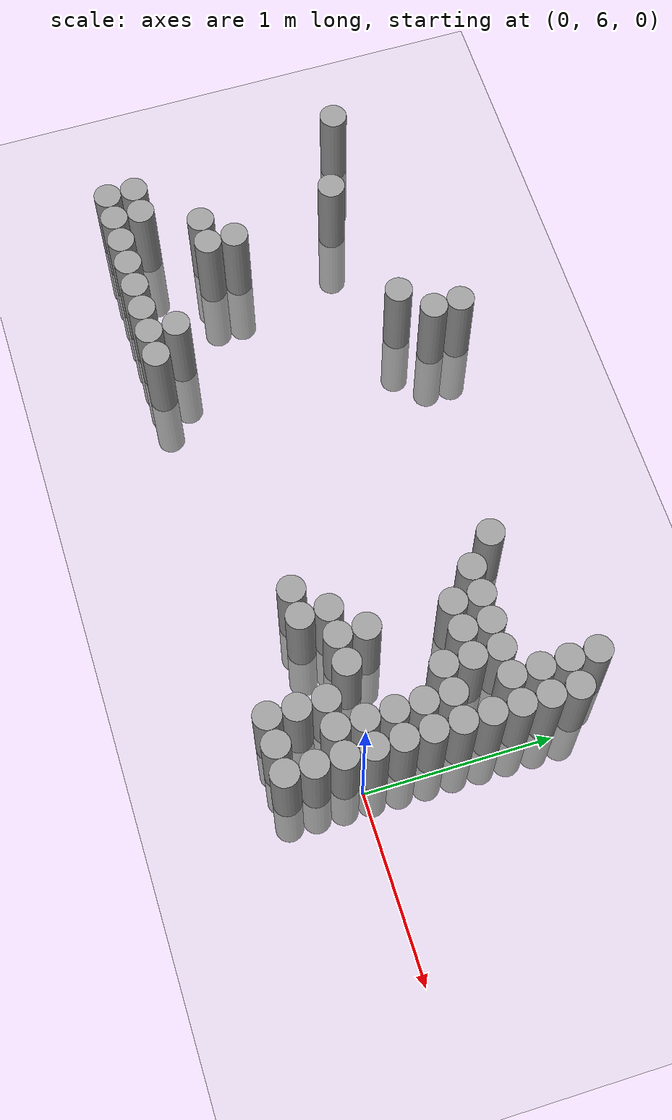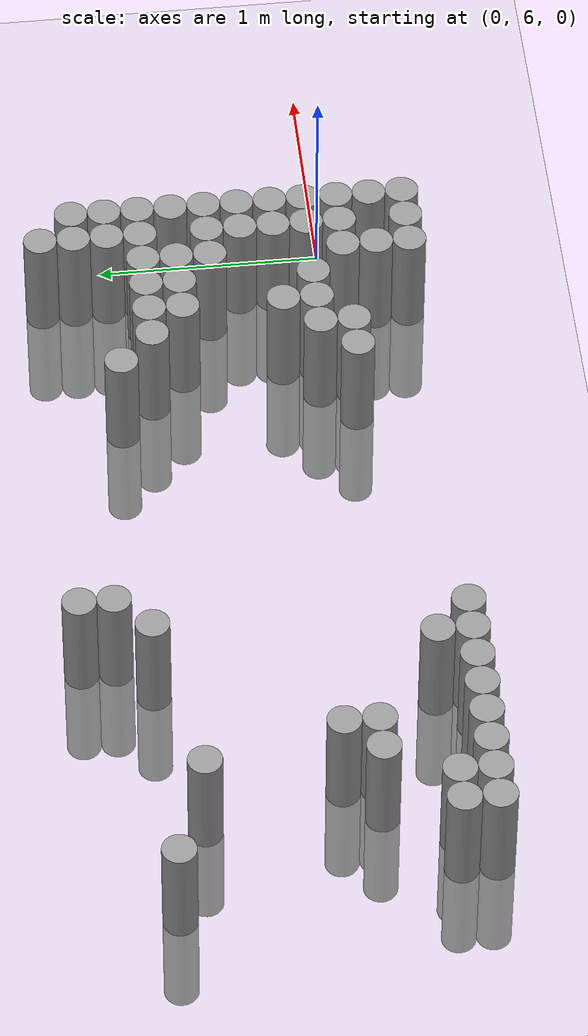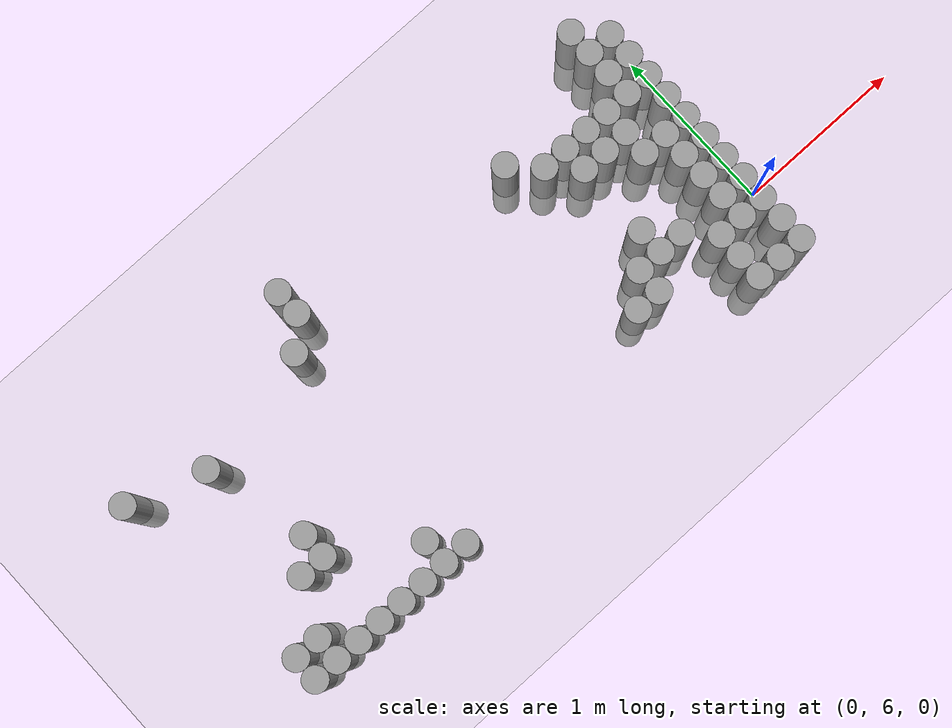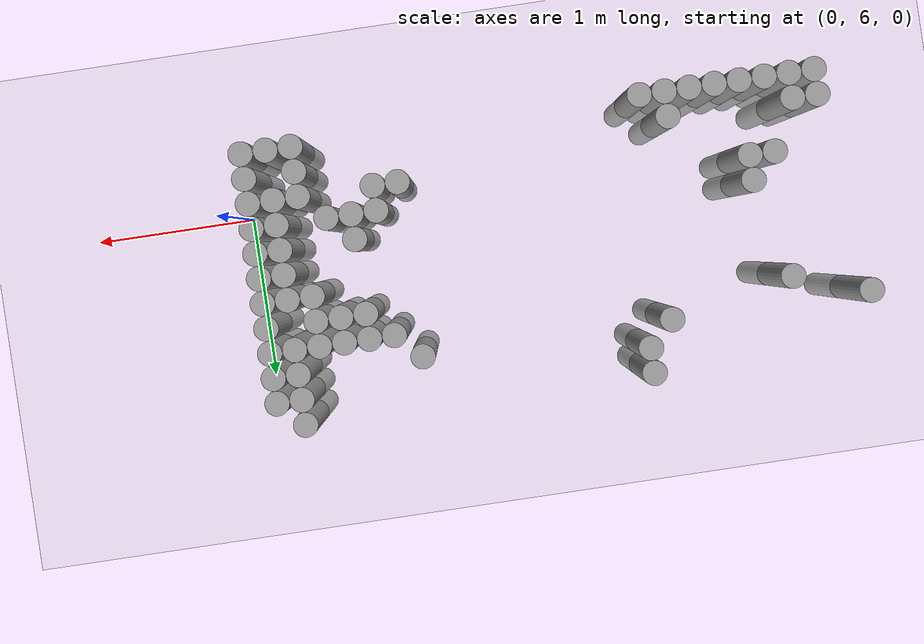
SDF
<sdf version="1.6">
 <world name="default">
  <model name="ground_plane">
   <static>1</static>
   <static>1</static>
   <link name="link">
    <collision name="collision">
     <geometry><plane><normal>0 0 1</normal><size>100 100</size></plane></geometry>
     <surface><friction><ode><mu>100</mu><mu2>50</mu2></ode></friction></surface>
    </collision>
    <visual name="visual">
     <cast_shadows>0</cast_shadows>
     <geometry><plane><normal>0 0 1</normal><size>100 100</size></plane></geometry>
     <material>
      <script><uri>file://media/materials/scripts/gazebo.material</uri><name>Gazebo/Grey</name></script>
     </material>
    </visual>
   </link>
  </model>
  <model name="unit_cylinder_163">
   <static>1</static>
   <pose>-3.675000 6.975000 0.000000 0.000000 0.000000 0.000000</pose>
   <link name="link">
    <inertial>
     <mass>1</mass>
     <inertia><ixx>0.145833</ixx><ixy>0</ixy><ixz>0</ixz><iyy>0.145833</iyy><iyz>0</iyz><izz>0.125</izz></inertia>
    </inertial>
    <collision name="collision">
     <geometry><cylinder><radius>0.075000</radius><length>1</length></cylinder></geometry>
    </collision>
    <visual name="visual">
     <geometry><cylinder><radius>0.075000</radius><length>1</length></cylinder></geometry>
     <material>
      <script><name>Gazebo/Grey</name><uri>file://media/materials/scripts/gazebo.material</uri></script>
     </material>
    </visual>
   </link>
  </model>
  <model name="unit_cylinder_166">
   <static>1</static>
   <pose>-3.525000 5.625000 0.000000 0.000000 0.000000 0.000000</pose>
   <link name="link">
    <inertial>
     <mass>1</mass>
     <inertia><ixx>0.145833</ixx><ixy>0</ixy><ixz>0</ixz><iyy>0.145833</iyy><iyz>0</iyz><izz>0.125</izz></inertia>
    </inertial>
    <collision name="collision">
     <geometry><cylinder><radius>0.075000</radius><length>1</length></cylinder></geometry>
    </collision>
    <visual name="visual">
     <geometry><cylinder><radius>0.075000</radius><length>1</length></cylinder></geometry>
     <material>
      <script><name>Gazebo/Grey</name><uri>file://media/materials/scripts/gazebo.material</uri></script>
     </material>
    </visual>
   </link>
  </model>
  <model name="unit_cylinder_167">
   <static>1</static>
   <pose>-3.525000 5.775000 0.000000 0.000000 0.000000 0.000000</pose>
   <link name="link">
    <inertial>
     <mass>1</mass>
     <inertia><ixx>0.145833</ixx><ixy>0</ixy><ixz>0</ixz><iyy>0.145833</iyy><iyz>0</iyz><izz>0.125</izz></inertia>
    </inertial>
    <collision name="collision">
     <geometry><cylinder><radius>0.075000</radius><length>1</length></cylinder></geometry>
    </collision>
    <visual name="visual">
     <geometry><cylinder><radius>0.075000</radius><length>1</length></cylinder></geometry>
     <material>
      <script><name>Gazebo/Grey</name><uri>file://media/materials/scripts/gazebo.material</uri></script>
     </material>
    </visual>
   </link>
  </model>
  <model name="unit_cylinder_168">
   <static>1</static>
   <pose>-3.375000 5.625000 0.000000 0.000000 0.000000 0.000000</pose>
   <link name="link">
    <inertial>
     <mass>1</mass>
     <inertia><ixx>0.145833</ixx><ixy>0</ixy><ixz>0</ixz><iyy>0.145833</iyy><iyz>0</iyz><izz>0.125</izz></inertia>
    </inertial>
    <collision name="collision">
     <geometry><cylinder><radius>0.075000</radius><length>1</length></cylinder></geometry>
    </collision>
    <visual name="visual">
     <geometry><cylinder><radius>0.075000</radius><length>1</length></cylinder></geometry>
     <material>
      <script><name>Gazebo/Grey</name><uri>file://media/materials/scripts/gazebo.material</uri></script>
     </material>
    </visual>
   </link>
  </model>
  <model name="unit_cylinder_169">
   <static>1</static>
   <pose>-3.375000 5.775000 0.000000 0.000000 0.000000 0.000000</pose>
   <link name="link">
    <inertial>
     <mass>1</mass>
     <inertia><ixx>0.145833</ixx><ixy>0</ixy><ixz>0</ixz><iyy>0.145833</iyy><iyz>0</iyz><izz>0.125</izz></inertia>
    </inertial>
    <collision name="collision">
     <geometry><cylinder><radius>0.075000</radius><length>1</length></cylinder></geometry>
    </collision>
    <visual name="visual">
     <geometry><cylinder><radius>0.075000</radius><length>1</length></cylinder></geometry>
     <material>
      <script><name>Gazebo/Grey</name><uri>file://media/materials/scripts/gazebo.material</uri></script>
     </material>
    </visual>
   </link>
  </model>
  <model name="unit_cylinder_171">
   <static>1</static>
   <pose>-3.225000 5.625000 0.000000 0.000000 0.000000 0.000000</pose>
   <link name="link">
    <inertial>
     <mass>1</mass>
     <inertia><ixx>0.145833</ixx><ixy>0</ixy><ixz>0</ixz><iyy>0.145833</iyy><iyz>0</iyz><izz>0.125</izz></inertia>
    </inertial>
    <collision name="collision">
     <geometry><cylinder><radius>0.075000</radius><length>1</length></cylinder></geometry>
    </collision>
    <visual name="visual">
     <geometry><cylinder><radius>0.075000</radius><length>1</length></cylinder></geometry>
     <material>
      <script><name>Gazebo/Grey</name><uri>file://media/materials/scripts/gazebo.material</uri></script>
     </material>
    </visual>
   </link>
  </model>
  <model name="unit_cylinder_172">
   <static>1</static>
   <pose>-3.225000 6.075000 0.000000 0.000000 0.000000 0.000000</pose>
   <link name="link">
    <inertial>
     <mass>1</mass>
     <inertia><ixx>0.145833</ixx><ixy>0</ixy><ixz>0</ixz><iyy>0.145833</iyy><iyz>0</iyz><izz>0.125</izz></inertia>
    </inertial>
    <collision name="collision">
     <geometry><cylinder><radius>0.075000</radius><length>1</length></cylinder></geometry>
    </collision>
    <visual name="visual">
     <geometry><cylinder><radius>0.075000</radius><length>1</length></cylinder></geometry>
     <material>
      <script><name>Gazebo/Grey</name><uri>file://media/materials/scripts/gazebo.material</uri></script>
     </material>
    </visual>
   </link>
  </model>
  <model name="unit_cylinder_173">
   <static>1</static>
   <pose>-3.225000 6.825000 0.000000 0.000000 0.000000 0.000000</pose>
   <link name="link">
    <inertial>
     <mass>1</mass>
     <inertia><ixx>0.145833</ixx><ixy>0</ixy><ixz>0</ixz><iyy>0.145833</iyy><iyz>0</iyz><izz>0.125</izz></inertia>
    </inertial>
    <collision name="collision">
     <geometry><cylinder><radius>0.075000</radius><length>1</length></cylinder></geometry>
    </collision>
    <visual name="visual">
     <geometry><cylinder><radius>0.075000</radius><length>1</length></cylinder></geometry>
     <material>
      <script><name>Gazebo/Grey</name><uri>file://media/materials/scripts/gazebo.material</uri></script>
     </material>
    </visual>
   </link>
  </model>
  <model name="unit_cylinder_177">
   <static>1</static>
   <pose>-3.075000 5.625000 0.000000 0.000000 0.000000 0.000000</pose>
   <link name="link">
    <inertial>
     <mass>1</mass>
     <inertia><ixx>0.145833</ixx><ixy>0</ixy><ixz>0</ixz><iyy>0.145833</iyy><iyz>0</iyz><izz>0.125</izz></inertia>
    </inertial>
    <collision name="collision">
     <geometry><cylinder><radius>0.075000</radius><length>1</length></cylinder></geometry>
    </collision>
    <visual name="visual">
     <geometry><cylinder><radius>0.075000</radius><length>1</length></cylinder></geometry>
     <material>
      <script><name>Gazebo/Grey</name><uri>file://media/materials/scripts/gazebo.material</uri></script>
     </material>
    </visual>
   </link>
  </model>
  <model name="unit_cylinder_178">
   <static>1</static>
   <pose>-3.075000 6.075000 0.000000 0.000000 0.000000 0.000000</pose>
   <link name="link">
    <inertial>
     <mass>1</mass>
     <inertia><ixx>0.145833</ixx><ixy>0</ixy><ixz>0</ixz><iyy>0.145833</iyy><iyz>0</iyz><izz>0.125</izz></inertia>
    </inertial>
    <collision name="collision">
     <geometry><cylinder><radius>0.075000</radius><length>1</length></cylinder></geometry>
    </collision>
    <visual name="visual">
     <geometry><cylinder><radius>0.075000</radius><length>1</length></cylinder></geometry>
     <material>
      <script><name>Gazebo/Grey</name><uri>file://media/materials/scripts/gazebo.material</uri></script>
     </material>
    </visual>
   </link>
  </model>
  <model name="unit_cylinder_179">
   <static>1</static>
   <pose>-3.075000 6.225000 0.000000 0.000000 0.000000 0.000000</pose>
   <link name="link">
    <inertial>
     <mass>1</mass>
     <inertia><ixx>0.145833</ixx><ixy>0</ixy><ixz>0</ixz><iyy>0.145833</iyy><iyz>0</iyz><izz>0.125</izz></inertia>
    </inertial>
    <collision name="collision">
     <geometry><cylinder><radius>0.075000</radius><length>1</length></cylinder></geometry>
    </collision>
    <visual name="visual">
     <geometry><cylinder><radius>0.075000</radius><length>1</length></cylinder></geometry>
     <material>
      <script><name>Gazebo/Grey</name><uri>file://media/materials/scripts/gazebo.material</uri></script>
     </material>
    </visual>
   </link>
  </model>
  <model name="unit_cylinder_182">
   <static>1</static>
   <pose>-2.925000 5.625000 0.000000 0.000000 0.000000 0.000000</pose>
   <link name="link">
    <inertial>
     <mass>1</mass>
     <inertia><ixx>0.145833</ixx><ixy>0</ixy><ixz>0</ixz><iyy>0.145833</iyy><iyz>0</iyz><izz>0.125</izz></inertia>
    </inertial>
    <collision name="collision">
     <geometry><cylinder><radius>0.075000</radius><length>1</length></cylinder></geometry>
    </collision>
    <visual name="visual">
     <geometry><cylinder><radius>0.075000</radius><length>1</length></cylinder></geometry>
     <material>
      <script><name>Gazebo/Grey</name><uri>file://media/materials/scripts/gazebo.material</uri></script>
     </material>
    </visual>
   </link>
  </model>
  <model name="unit_cylinder_187">
   <static>1</static>
   <pose>-2.775000 5.625000 0.000000 0.000000 0.000000 0.000000</pose>
   <link name="link">
    <inertial>
     <mass>1</mass>
     <inertia><ixx>0.145833</ixx><ixy>0</ixy><ixz>0</ixz><iyy>0.145833</iyy><iyz>0</iyz><izz>0.125</izz></inertia>
    </inertial>
    <collision name="collision">
     <geometry><cylinder><radius>0.075000</radius><length>1</length></cylinder></geometry>
    </collision>
    <visual name="visual">
     <geometry><cylinder><radius>0.075000</radius><length>1</length></cylinder></geometry>
     <material>
      <script><name>Gazebo/Grey</name><uri>file://media/materials/scripts/gazebo.material</uri></script>
     </material>
    </visual>
   </link>
  </model>
  <model name="unit_cylinder_191">
   <static>1</static>
   <pose>-2.625000 5.625000 0.000000 0.000000 0.000000 0.000000</pose>
   <link name="link">
    <inertial>
     <mass>1</mass>
     <inertia><ixx>0.145833</ixx><ixy>0</ixy><ixz>0</ixz><iyy>0.145833</iyy><iyz>0</iyz><izz>0.125</izz></inertia>
    </inertial>
    <collision name="collision">
     <geometry><cylinder><radius>0.075000</radius><length>1</length></cylinder></geometry>
    </collision>
    <visual name="visual">
     <geometry><cylinder><radius>0.075000</radius><length>1</length></cylinder></geometry>
     <material>
      <script><name>Gazebo/Grey</name><uri>file://media/materials/scripts/gazebo.material</uri></script>
     </material>
    </visual>
   </link>
  </model>
  <model name="unit_cylinder_192">
   <static>1</static>
   <pose>-2.625000 5.775000 0.000000 0.000000 0.000000 0.000000</pose>
   <link name="link">
    <inertial>
     <mass>1</mass>
     <inertia><ixx>0.145833</ixx><ixy>0</ixy><ixz>0</ixz><iyy>0.145833</iyy><iyz>0</iyz><izz>0.125</izz></inertia>
    </inertial>
    <collision name="collision">
     <geometry><cylinder><radius>0.075000</radius><length>1</length></cylinder></geometry>
    </collision>
    <visual name="visual">
     <geometry><cylinder><radius>0.075000</radius><length>1</length></cylinder></geometry>
     <material>
      <script><name>Gazebo/Grey</name><uri>file://media/materials/scripts/gazebo.material</uri></script>
     </material>
    </visual>
   </link>
  </model>
  <model name="unit_cylinder_198">
   <static>1</static>
   <pose>-2.475000 5.625000 0.000000 0.000000 0.000000 0.000000</pose>
   <link name="link">
    <inertial>
     <mass>1</mass>
     <inertia><ixx>0.145833</ixx><ixy>0</ixy><ixz>0</ixz><iyy>0.145833</iyy><iyz>0</iyz><izz>0.125</izz></inertia>
    </inertial>
    <collision name="collision">
     <geometry><cylinder><radius>0.075000</radius><length>1</length></cylinder></geometry>
    </collision>
    <visual name="visual">
     <geometry><cylinder><radius>0.075000</radius><length>1</length></cylinder></geometry>
     <material>
      <script><name>Gazebo/Grey</name><uri>file://media/materials/scripts/gazebo.material</uri></script>
     </material>
    </visual>
   </link>
  </model>
  <model name="unit_cylinder_199">
   <static>1</static>
   <pose>-2.475000 6.975000 0.000000 0.000000 0.000000 0.000000</pose>
   <link name="link">
    <inertial>
     <mass>1</mass>
     <inertia><ixx>0.145833</ixx><ixy>0</ixy><ixz>0</ixz><iyy>0.145833</iyy><iyz>0</iyz><izz>0.125</izz></inertia>
    </inertial>
    <collision name="collision">
     <geometry><cylinder><radius>0.075000</radius><length>1</length></cylinder></geometry>
    </collision>
    <visual name="visual">
     <geometry><cylinder><radius>0.075000</radius><length>1</length></cylinder></geometry>
     <material>
      <script><name>Gazebo/Grey</name><uri>file://media/materials/scripts/gazebo.material</uri></script>
     </material>
    </visual>
   </link>
  </model>
  <model name="unit_cylinder_206">
   <static>1</static>
   <pose>-2.325000 7.125000 0.000000 0.000000 0.000000 0.000000</pose>
   <link name="link">
    <inertial>
     <mass>1</mass>
     <inertia><ixx>0.145833</ixx><ixy>0</ixy><ixz>0</ixz><iyy>0.145833</iyy><iyz>0</iyz><izz>0.125</izz></inertia>
    </inertial>
    <collision name="collision">
     <geometry><cylinder><radius>0.075000</radius><length>1</length></cylinder></geometry>
    </collision>
    <visual name="visual">
     <geometry><cylinder><radius>0.075000</radius><length>1</length></cylinder></geometry>
     <material>
      <script><name>Gazebo/Grey</name><uri>file://media/materials/scripts/gazebo.material</uri></script>
     </material>
    </visual>
   </link>
  </model>
  <model name="unit_cylinder_207">
   <static>1</static>
   <pose>-2.325000 7.275000 0.000000 0.000000 0.000000 0.000000</pose>
   <link name="link">
    <inertial>
     <mass>1</mass>
     <inertia><ixx>0.145833</ixx><ixy>0</ixy><ixz>0</ixz><iyy>0.145833</iyy><iyz>0</iyz><izz>0.125</izz></inertia>
    </inertial>
    <collision name="collision">
     <geometry><cylinder><radius>0.075000</radius><length>1</length></cylinder></geometry>
    </collision>
    <visual name="visual">
     <geometry><cylinder><radius>0.075000</radius><length>1</length></cylinder></geometry>
     <material>
      <script><name>Gazebo/Grey</name><uri>file://media/materials/scripts/gazebo.material</uri></script>
     </material>
    </visual>
   </link>
  </model>
  <model name="unit_cylinder_223">
   <static>1</static>
   <pose>-0.975000 5.925000 0.000000 0.000000 0.000000 0.000000</pose>
   <link name="link">
    <inertial>
     <mass>1</mass>
     <inertia><ixx>0.145833</ixx><ixy>0</ixy><ixz>0</ixz><iyy>0.145833</iyy><iyz>0</iyz><izz>0.125</izz></inertia>
    </inertial>
    <collision name="collision">
     <geometry><cylinder><radius>0.075000</radius><length>1</length></cylinder></geometry>
    </collision>
    <visual name="visual">
     <geometry><cylinder><radius>0.075000</radius><length>1</length></cylinder></geometry>
     <material>
      <script><name>Gazebo/Grey</name><uri>file://media/materials/scripts/gazebo.material</uri></script>
     </material>
    </visual>
   </link>
  </model>
  <model name="unit_cylinder_224">
   <static>1</static>
   <pose>-0.975000 6.975000 0.000000 0.000000 0.000000 0.000000</pose>
   <link name="link">
    <inertial>
     <mass>1</mass>
     <inertia><ixx>0.145833</ixx><ixy>0</ixy><ixz>0</ixz><iyy>0.145833</iyy><iyz>0</iyz><izz>0.125</izz></inertia>
    </inertial>
    <collision name="collision">
     <geometry><cylinder><radius>0.075000</radius><length>1</length></cylinder></geometry>
    </collision>
    <visual name="visual">
     <geometry><cylinder><radius>0.075000</radius><length>1</length></cylinder></geometry>
     <material>
      <script><name>Gazebo/Grey</name><uri>file://media/materials/scripts/gazebo.material</uri></script>
     </material>
    </visual>
   </link>
  </model>
  <model name="unit_cylinder_226">
   <static>1</static>
   <pose>-0.825000 5.925000 0.000000 0.000000 0.000000 0.000000</pose>
   <link name="link">
    <inertial>
     <mass>1</mass>
     <inertia><ixx>0.145833</ixx><ixy>0</ixy><ixz>0</ixz><iyy>0.145833</iyy><iyz>0</iyz><izz>0.125</izz></inertia>
    </inertial>
    <collision name="collision">
     <geometry><cylinder><radius>0.075000</radius><length>1</length></cylinder></geometry>
    </collision>
    <visual name="visual">
     <geometry><cylinder><radius>0.075000</radius><length>1</length></cylinder></geometry>
     <material>
      <script><name>Gazebo/Grey</name><uri>file://media/materials/scripts/gazebo.material</uri></script>
     </material>
    </visual>
   </link>
  </model>
  <model name="unit_cylinder_227">
   <static>1</static>
   <pose>-0.825000 6.075000 0.000000 0.000000 0.000000 0.000000</pose>
   <link name="link">
    <inertial>
     <mass>1</mass>
     <inertia><ixx>0.145833</ixx><ixy>0</ixy><ixz>0</ixz><iyy>0.145833</iyy><iyz>0</iyz><izz>0.125</izz></inertia>
    </inertial>
    <collision name="collision">
     <geometry><cylinder><radius>0.075000</radius><length>1</length></cylinder></geometry>
    </collision>
    <visual name="visual">
     <geometry><cylinder><radius>0.075000</radius><length>1</length></cylinder></geometry>
     <material>
      <script><name>Gazebo/Grey</name><uri>file://media/materials/scripts/gazebo.material</uri></script>
     </material>
    </visual>
   </link>
  </model>
  <model name="unit_cylinder_228">
   <static>1</static>
   <pose>-0.825000 6.825000 0.000000 0.000000 0.000000 0.000000</pose>
   <link name="link">
    <inertial>
     <mass>1</mass>
     <inertia><ixx>0.145833</ixx><ixy>0</ixy><ixz>0</ixz><iyy>0.145833</iyy><iyz>0</iyz><izz>0.125</izz></inertia>
    </inertial>
    <collision name="collision">
     <geometry><cylinder><radius>0.075000</radius><length>1</length></cylinder></geometry>
    </collision>
    <visual name="visual">
     <geometry><cylinder><radius>0.075000</radius><length>1</length></cylinder></geometry>
     <material>
      <script><name>Gazebo/Grey</name><uri>file://media/materials/scripts/gazebo.material</uri></script>
     </material>
    </visual>
   </link>
  </model>
  <model name="unit_cylinder_229">
   <static>1</static>
   <pose>-0.675000 6.075000 0.000000 0.000000 0.000000 0.000000</pose>
   <link name="link">
    <inertial>
     <mass>1</mass>
     <inertia><ixx>0.145833</ixx><ixy>0</ixy><ixz>0</ixz><iyy>0.145833</iyy><iyz>0</iyz><izz>0.125</izz></inertia>
    </inertial>
    <collision name="collision">
     <geometry><cylinder><radius>0.075000</radius><length>1</length></cylinder></geometry>
    </collision>
    <visual name="visual">
     <geometry><cylinder><radius>0.075000</radius><length>1</length></cylinder></geometry>
     <material>
      <script><name>Gazebo/Grey</name><uri>file://media/materials/scripts/gazebo.material</uri></script>
     </material>
    </visual>
   </link>
  </model>
  <model name="unit_cylinder_230">
   <static>1</static>
   <pose>-0.675000 6.225000 0.000000 0.000000 0.000000 0.000000</pose>
   <link name="link">
    <inertial>
     <mass>1</mass>
     <inertia><ixx>0.145833</ixx><ixy>0</ixy><ixz>0</ixz><iyy>0.145833</iyy><iyz>0</iyz><izz>0.125</izz></inertia>
    </inertial>
    <collision name="collision">
     <geometry><cylinder><radius>0.075000</radius><length>1</length></cylinder></geometry>
    </collision>
    <visual name="visual">
     <geometry><cylinder><radius>0.075000</radius><length>1</length></cylinder></geometry>
     <material>
      <script><name>Gazebo/Grey</name><uri>file://media/materials/scripts/gazebo.material</uri></script>
     </material>
    </visual>
   </link>
  </model>
  <model name="unit_cylinder_231">
   <static>1</static>
   <pose>-0.675000 6.675000 0.000000 0.000000 0.000000 0.000000</pose>
   <link name="link">
    <inertial>
     <mass>1</mass>
     <inertia><ixx>0.145833</ixx><ixy>0</ixy><ixz>0</ixz><iyy>0.145833</iyy><iyz>0</iyz><izz>0.125</izz></inertia>
    </inertial>
    <collision name="collision">
     <geometry><cylinder><radius>0.075000</radius><length>1</length></cylinder></geometry>
    </collision>
    <visual name="visual">
     <geometry><cylinder><radius>0.075000</radius><length>1</length></cylinder></geometry>
     <material>
      <script><name>Gazebo/Grey</name><uri>file://media/materials/scripts/gazebo.material</uri></script>
     </material>
    </visual>
   </link>
  </model>
  <model name="unit_cylinder_232">
   <static>1</static>
   <pose>-0.675000 6.825000 0.000000 0.000000 0.000000 0.000000</pose>
   <link name="link">
    <inertial>
     <mass>1</mass>
     <inertia><ixx>0.145833</ixx><ixy>0</ixy><ixz>0</ixz><iyy>0.145833</iyy><iyz>0</iyz><izz>0.125</izz></inertia>
    </inertial>
    <collision name="collision">
     <geometry><cylinder><radius>0.075000</radius><length>1</length></cylinder></geometry>
    </collision>
    <visual name="visual">
     <geometry><cylinder><radius>0.075000</radius><length>1</length></cylinder></geometry>
     <material>
      <script><name>Gazebo/Grey</name><uri>file://media/materials/scripts/gazebo.material</uri></script>
     </material>
    </visual>
   </link>
  </model>
  <model name="unit_cylinder_233">
   <static>1</static>
   <pose>-0.525000 6.075000 0.000000 0.000000 0.000000 0.000000</pose>
   <link name="link">
    <inertial>
     <mass>1</mass>
     <inertia><ixx>0.145833</ixx><ixy>0</ixy><ixz>0</ixz><iyy>0.145833</iyy><iyz>0</iyz><izz>0.125</izz></inertia>
    </inertial>
    <collision name="collision">
     <geometry><cylinder><radius>0.075000</radius><length>1</length></cylinder></geometry>
    </collision>
    <visual name="visual">
     <geometry><cylinder><radius>0.075000</radius><length>1</length></cylinder></geometry>
     <material>
      <script><name>Gazebo/Grey</name><uri>file://media/materials/scripts/gazebo.material</uri></script>
     </material>
    </visual>
   </link>
  </model>
  <model name="unit_cylinder_234">
   <static>1</static>
   <pose>-0.525000 6.675000 0.000000 0.000000 0.000000 0.000000</pose>
   <link name="link">
    <inertial>
     <mass>1</mass>
     <inertia><ixx>0.145833</ixx><ixy>0</ixy><ixz>0</ixz><iyy>0.145833</iyy><iyz>0</iyz><izz>0.125</izz></inertia>
    </inertial>
    <collision name="collision">
     <geometry><cylinder><radius>0.075000</radius><length>1</length></cylinder></geometry>
    </collision>
    <visual name="visual">
     <geometry><cylinder><radius>0.075000</radius><length>1</length></cylinder></geometry>
     <material>
      <script><name>Gazebo/Grey</name><uri>file://media/materials/scripts/gazebo.material</uri></script>
     </material>
    </visual>
   </link>
  </model>
  <model name="unit_cylinder_235">
   <static>1</static>
   <pose>-0.525000 6.825000 0.000000 0.000000 0.000000 0.000000</pose>
   <link name="link">
    <inertial>
     <mass>1</mass>
     <inertia><ixx>0.145833</ixx><ixy>0</ixy><ixz>0</ixz><iyy>0.145833</iyy><iyz>0</iyz><izz>0.125</izz></inertia>
    </inertial>
    <collision name="collision">
     <geometry><cylinder><radius>0.075000</radius><length>1</length></cylinder></geometry>
    </collision>
    <visual name="visual">
     <geometry><cylinder><radius>0.075000</radius><length>1</length></cylinder></geometry>
     <material>
      <script><name>Gazebo/Grey</name><uri>file://media/materials/scripts/gazebo.material</uri></script>
     </material>
    </visual>
   </link>
  </model>
  <model name="unit_cylinder_236">
   <static>1</static>
   <pose>-0.375000 5.625000 0.000000 0.000000 0.000000 0.000000</pose>
   <link name="link">
    <inertial>
     <mass>1</mass>
     <inertia><ixx>0.145833</ixx><ixy>0</ixy><ixz>0</ixz><iyy>0.145833</iyy><iyz>0</iyz><izz>0.125</izz></inertia>
    </inertial>
    <collision name="collision">
     <geometry><cylinder><radius>0.075000</radius><length>1</length></cylinder></geometry>
    </collision>
    <visual name="visual">
     <geometry><cylinder><radius>0.075000</radius><length>1</length></cylinder></geometry>
     <material>
      <script><name>Gazebo/Grey</name><uri>file://media/materials/scripts/gazebo.material</uri></script>
     </material>
    </visual>
   </link>
  </model>
  <model name="unit_cylinder_237">
   <static>1</static>
   <pose>-0.375000 5.775000 0.000000 0.000000 0.000000 0.000000</pose>
   <link name="link">
    <inertial>
     <mass>1</mass>
     <inertia><ixx>0.145833</ixx><ixy>0</ixy><ixz>0</ixz><iyy>0.145833</iyy><iyz>0</iyz><izz>0.125</izz></inertia>
    </inertial>
    <collision name="collision">
     <geometry><cylinder><radius>0.075000</radius><length>1</length></cylinder></geometry>
    </collision>
    <visual name="visual">
     <geometry><cylinder><radius>0.075000</radius><length>1</length></cylinder></geometry>
     <material>
      <script><name>Gazebo/Grey</name><uri>file://media/materials/scripts/gazebo.material</uri></script>
     </material>
    </visual>
   </link>
  </model>
  <model name="unit_cylinder_238">
   <static>1</static>
   <pose>-0.375000 5.925000 0.000000 0.000000 0.000000 0.000000</pose>
   <link name="link">
    <inertial>
     <mass>1</mass>
     <inertia><ixx>0.145833</ixx><ixy>0</ixy><ixz>0</ixz><iyy>0.145833</iyy><iyz>0</iyz><izz>0.125</izz></inertia>
    </inertial>
    <collision name="collision">
     <geometry><cylinder><radius>0.075000</radius><length>1</length></cylinder></geometry>
    </collision>
    <visual name="visual">
     <geometry><cylinder><radius>0.075000</radius><length>1</length></cylinder></geometry>
     <material>
      <script><name>Gazebo/Grey</name><uri>file://media/materials/scripts/gazebo.material</uri></script>
     </material>
    </visual>
   </link>
  </model>
  <model name="unit_cylinder_239">
   <static>1</static>
   <pose>-0.375000 6.525000 0.000000 0.000000 0.000000 0.000000</pose>
   <link name="link">
    <inertial>
     <mass>1</mass>
     <inertia><ixx>0.145833</ixx><ixy>0</ixy><ixz>0</ixz><iyy>0.145833</iyy><iyz>0</iyz><izz>0.125</izz></inertia>
    </inertial>
    <collision name="collision">
     <geometry><cylinder><radius>0.075000</radius><length>1</length></cylinder></geometry>
    </collision>
    <visual name="visual">
     <geometry><cylinder><radius>0.075000</radius><length>1</length></cylinder></geometry>
     <material>
      <script><name>Gazebo/Grey</name><uri>file://media/materials/scripts/gazebo.material</uri></script>
     </material>
    </visual>
   </link>
  </model>
  <model name="unit_cylinder_240">
   <static>1</static>
   <pose>-0.375000 6.675000 0.000000 0.000000 0.000000 0.000000</pose>
   <link name="link">
    <inertial>
     <mass>1</mass>
     <inertia><ixx>0.145833</ixx><ixy>0</ixy><ixz>0</ixz><iyy>0.145833</iyy><iyz>0</iyz><izz>0.125</izz></inertia>
    </inertial>
    <collision name="collision">
     <geometry><cylinder><radius>0.075000</radius><length>1</length></cylinder></geometry>
    </collision>
    <visual name="visual">
     <geometry><cylinder><radius>0.075000</radius><length>1</length></cylinder></geometry>
     <material>
      <script><name>Gazebo/Grey</name><uri>file://media/materials/scripts/gazebo.material</uri></script>
     </material>
    </visual>
   </link>
  </model>
  <model name="unit_cylinder_241">
   <static>1</static>
   <pose>-0.375000 6.825000 0.000000 0.000000 0.000000 0.000000</pose>
   <link name="link">
    <inertial>
     <mass>1</mass>
     <inertia><ixx>0.145833</ixx><ixy>0</ixy><ixz>0</ixz><iyy>0.145833</iyy><iyz>0</iyz><izz>0.125</izz></inertia>
    </inertial>
    <collision name="collision">
     <geometry><cylinder><radius>0.075000</radius><length>1</length></cylinder></geometry>
    </collision>
    <visual name="visual">
     <geometry><cylinder><radius>0.075000</radius><length>1</length></cylinder></geometry>
     <material>
      <script><name>Gazebo/Grey</name><uri>file://media/materials/scripts/gazebo.material</uri></script>
     </material>
    </visual>
   </link>
  </model>
  <model name="unit_cylinder_244">
   <static>1</static>
   <pose>-0.225000 5.625000 0.000000 0.000000 0.000000 0.000000</pose>
   <link name="link">
    <inertial>
     <mass>1</mass>
     <inertia><ixx>0.145833</ixx><ixy>0</ixy><ixz>0</ixz><iyy>0.145833</iyy><iyz>0</iyz><izz>0.125</izz></inertia>
    </inertial>
    <collision name="collision">
     <geometry><cylinder><radius>0.075000</radius><length>1</length></cylinder></geometry>
    </collision>
    <visual name="visual">
     <geometry><cylinder><radius>0.075000</radius><length>1</length></cylinder></geometry>
     <material>
      <script><name>Gazebo/Grey</name><uri>file://media/materials/scripts/gazebo.material</uri></script>
     </material>
    </visual>
   </link>
  </model>
  <model name="unit_cylinder_245">
   <static>1</static>
   <pose>-0.225000 5.925000 0.000000 0.000000 0.000000 0.000000</pose>
   <link name="link">
    <inertial>
     <mass>1</mass>
     <inertia><ixx>0.145833</ixx><ixy>0</ixy><ixz>0</ixz><iyy>0.145833</iyy><iyz>0</iyz><izz>0.125</izz></inertia>
    </inertial>
    <collision name="collision">
     <geometry><cylinder><radius>0.075000</radius><length>1</length></cylinder></geometry>
    </collision>
    <visual name="visual">
     <geometry><cylinder><radius>0.075000</radius><length>1</length></cylinder></geometry>
     <material>
      <script><name>Gazebo/Grey</name><uri>file://media/materials/scripts/gazebo.material</uri></script>
     </material>
    </visual>
   </link>
  </model>
  <model name="unit_cylinder_246">
   <static>1</static>
   <pose>-0.225000 6.075000 0.000000 0.000000 0.000000 0.000000</pose>
   <link name="link">
    <inertial>
     <mass>1</mass>
     <inertia><ixx>0.145833</ixx><ixy>0</ixy><ixz>0</ixz><iyy>0.145833</iyy><iyz>0</iyz><izz>0.125</izz></inertia>
    </inertial>
    <collision name="collision">
     <geometry><cylinder><radius>0.075000</radius><length>1</length></cylinder></geometry>
    </collision>
    <visual name="visual">
     <geometry><cylinder><radius>0.075000</radius><length>1</length></cylinder></geometry>
     <material>
      <script><name>Gazebo/Grey</name><uri>file://media/materials/scripts/gazebo.material</uri></script>
     </material>
    </visual>
   </link>
  </model>
  <model name="unit_cylinder_247">
   <static>1</static>
   <pose>-0.225000 6.225000 0.000000 0.000000 0.000000 0.000000</pose>
   <link name="link">
    <inertial>
     <mass>1</mass>
     <inertia><ixx>0.145833</ixx><ixy>0</ixy><ixz>0</ixz><iyy>0.145833</iyy><iyz>0</iyz><izz>0.125</izz></inertia>
    </inertial>
    <collision name="collision">
     <geometry><cylinder><radius>0.075000</radius><length>1</length></cylinder></geometry>
    </collision>
    <visual name="visual">
     <geometry><cylinder><radius>0.075000</radius><length>1</length></cylinder></geometry>
     <material>
      <script><name>Gazebo/Grey</name><uri>file://media/materials/scripts/gazebo.material</uri></script>
     </material>
    </visual>
   </link>
  </model>
  <model name="unit_cylinder_248">
   <static>1</static>
   <pose>-0.225000 6.375000 0.000000 0.000000 0.000000 0.000000</pose>
   <link name="link">
    <inertial>
     <mass>1</mass>
     <inertia><ixx>0.145833</ixx><ixy>0</ixy><ixz>0</ixz><iyy>0.145833</iyy><iyz>0</iyz><izz>0.125</izz></inertia>
    </inertial>
    <collision name="collision">
     <geometry><cylinder><radius>0.075000</radius><length>1</length></cylinder></geometry>
    </collision>
    <visual name="visual">
     <geometry><cylinder><radius>0.075000</radius><length>1</length></cylinder></geometry>
     <material>
      <script><name>Gazebo/Grey</name><uri>file://media/materials/scripts/gazebo.material</uri></script>
     </material>
    </visual>
   </link>
  </model>
  <model name="unit_cylinder_249">
   <static>1</static>
   <pose>-0.225000 6.525000 0.000000 0.000000 0.000000 0.000000</pose>
   <link name="link">
    <inertial>
     <mass>1</mass>
     <inertia><ixx>0.145833</ixx><ixy>0</ixy><ixz>0</ixz><iyy>0.145833</iyy><iyz>0</iyz><izz>0.125</izz></inertia>
    </inertial>
    <collision name="collision">
     <geometry><cylinder><radius>0.075000</radius><length>1</length></cylinder></geometry>
    </collision>
    <visual name="visual">
     <geometry><cylinder><radius>0.075000</radius><length>1</length></cylinder></geometry>
     <material>
      <script><name>Gazebo/Grey</name><uri>file://media/materials/scripts/gazebo.material</uri></script>
     </material>
    </visual>
   </link>
  </model>
  <model name="unit_cylinder_250">
   <static>1</static>
   <pose>-0.225000 6.825000 0.000000 0.000000 0.000000 0.000000</pose>
   <link name="link">
    <inertial>
     <mass>1</mass>
     <inertia><ixx>0.145833</ixx><ixy>0</ixy><ixz>0</ixz><iyy>0.145833</iyy><iyz>0</iyz><izz>0.125</izz></inertia>
    </inertial>
    <collision name="collision">
     <geometry><cylinder><radius>0.075000</radius><length>1</length></cylinder></geometry>
    </collision>
    <visual name="visual">
     <geometry><cylinder><radius>0.075000</radius><length>1</length></cylinder></geometry>
     <material>
      <script><name>Gazebo/Grey</name><uri>file://media/materials/scripts/gazebo.material</uri></script>
     </material>
    </visual>
   </link>
  </model>
  <model name="unit_cylinder_251">
   <static>1</static>
   <pose>-0.225000 6.975000 0.000000 0.000000 0.000000 0.000000</pose>
   <link name="link">
    <inertial>
     <mass>1</mass>
     <inertia><ixx>0.145833</ixx><ixy>0</ixy><ixz>0</ixz><iyy>0.145833</iyy><iyz>0</iyz><izz>0.125</izz></inertia>
    </inertial>
    <collision name="collision">
     <geometry><cylinder><radius>0.075000</radius><length>1</length></cylinder></geometry>
    </collision>
    <visual name="visual">
     <geometry><cylinder><radius>0.075000</radius><length>1</length></cylinder></geometry>
     <material>
      <script><name>Gazebo/Grey</name><uri>file://media/materials/scripts/gazebo.material</uri></script>
     </material>
    </visual>
   </link>
  </model>
  <model name="unit_cylinder_252">
   <static>1</static>
   <pose>-0.225000 7.125000 0.000000 0.000000 0.000000 0.000000</pose>
   <link name="link">
    <inertial>
     <mass>1</mass>
     <inertia><ixx>0.145833</ixx><ixy>0</ixy><ixz>0</ixz><iyy>0.145833</iyy><iyz>0</iyz><izz>0.125</izz></inertia>
    </inertial>
    <collision name="collision">
     <geometry><cylinder><radius>0.075000</radius><length>1</length></cylinder></geometry>
    </collision>
    <visual name="visual">
     <geometry><cylinder><radius>0.075000</radius><length>1</length></cylinder></geometry>
     <material>
      <script><name>Gazebo/Grey</name><uri>file://media/materials/scripts/gazebo.material</uri></script>
     </material>
    </visual>
   </link>
  </model>
  <model name="unit_cylinder_253">
   <static>1</static>
   <pose>-0.225000 7.275000 0.000000 0.000000 0.000000 0.000000</pose>
   <link name="link">
    <inertial>
     <mass>1</mass>
     <inertia><ixx>0.145833</ixx><ixy>0</ixy><ixz>0</ixz><iyy>0.145833</iyy><iyz>0</iyz><izz>0.125</izz></inertia>
    </inertial>
    <collision name="collision">
     <geometry><cylinder><radius>0.075000</radius><length>1</length></cylinder></geometry>
    </collision>
    <visual name="visual">
     <geometry><cylinder><radius>0.075000</radius><length>1</length></cylinder></geometry>
     <material>
      <script><name>Gazebo/Grey</name><uri>file://media/materials/scripts/gazebo.material</uri></script>
     </material>
    </visual>
   </link>
  </model>
  <model name="unit_cylinder_263">
   <static>1</static>
   <pose>-0.075000 5.625000 0.000000 0.000000 0.000000 0.000000</pose>
   <link name="link">
    <inertial>
     <mass>1</mass>
     <inertia><ixx>0.145833</ixx><ixy>0</ixy><ixz>0</ixz><iyy>0.145833</iyy><iyz>0</iyz><izz>0.125</izz></inertia>
    </inertial>
    <collision name="collision">
     <geometry><cylinder><radius>0.075000</radius><length>1</length></cylinder></geometry>
    </collision>
    <visual name="visual">
     <geometry><cylinder><radius>0.075000</radius><length>1</length></cylinder></geometry>
     <material>
      <script><name>Gazebo/Grey</name><uri>file://media/materials/scripts/gazebo.material</uri></script>
     </material>
    </visual>
   </link>
  </model>
  <model name="unit_cylinder_264">
   <static>1</static>
   <pose>-0.075000 5.775000 0.000000 0.000000 0.000000 0.000000</pose>
   <link name="link">
    <inertial>
     <mass>1</mass>
     <inertia><ixx>0.145833</ixx><ixy>0</ixy><ixz>0</ixz><iyy>0.145833</iyy><iyz>0</iyz><izz>0.125</izz></inertia>
    </inertial>
    <collision name="collision">
     <geometry><cylinder><radius>0.075000</radius><length>1</length></cylinder></geometry>
    </collision>
    <visual name="visual">
     <geometry><cylinder><radius>0.075000</radius><length>1</length></cylinder></geometry>
     <material>
      <script><name>Gazebo/Grey</name><uri>file://media/materials/scripts/gazebo.material</uri></script>
     </material>
    </visual>
   </link>
  </model>
  <model name="unit_cylinder_265">
   <static>1</static>
   <pose>-0.075000 5.925000 0.000000 0.000000 0.000000 0.000000</pose>
   <link name="link">
    <inertial>
     <mass>1</mass>
     <inertia><ixx>0.145833</ixx><ixy>0</ixy><ixz>0</ixz><iyy>0.145833</iyy><iyz>0</iyz><izz>0.125</izz></inertia>
    </inertial>
    <collision name="collision">
     <geometry><cylinder><radius>0.075000</radius><length>1</length></cylinder></geometry>
    </collision>
    <visual name="visual">
     <geometry><cylinder><radius>0.075000</radius><length>1</length></cylinder></geometry>
     <material>
      <script><name>Gazebo/Grey</name><uri>file://media/materials/scripts/gazebo.material</uri></script>
     </material>
    </visual>
   </link>
  </model>
  <model name="unit_cylinder_266">
   <static>1</static>
   <pose>-0.075000 6.075000 0.000000 0.000000 0.000000 0.000000</pose>
   <link name="link">
    <inertial>
     <mass>1</mass>
     <inertia><ixx>0.145833</ixx><ixy>0</ixy><ixz>0</ixz><iyy>0.145833</iyy><iyz>0</iyz><izz>0.125</izz></inertia>
    </inertial>
    <collision name="collision">
     <geometry><cylinder><radius>0.075000</radius><length>1</length></cylinder></geometry>
    </collision>
    <visual name="visual">
     <geometry><cylinder><radius>0.075000</radius><length>1</length></cylinder></geometry>
     <material>
      <script><name>Gazebo/Grey</name><uri>file://media/materials/scripts/gazebo.material</uri></script>
     </material>
    </visual>
   </link>
  </model>
  <model name="unit_cylinder_267">
   <static>1</static>
   <pose>-0.075000 6.225000 0.000000 0.000000 0.000000 0.000000</pose>
   <link name="link">
    <inertial>
     <mass>1</mass>
     <inertia><ixx>0.145833</ixx><ixy>0</ixy><ixz>0</ixz><iyy>0.145833</iyy><iyz>0</iyz><izz>0.125</izz></inertia>
    </inertial>
    <collision name="collision">
     <geometry><cylinder><radius>0.075000</radius><length>1</length></cylinder></geometry>
    </collision>
    <visual name="visual">
     <geometry><cylinder><radius>0.075000</radius><length>1</length></cylinder></geometry>
     <material>
      <script><name>Gazebo/Grey</name><uri>file://media/materials/scripts/gazebo.material</uri></script>
     </material>
    </visual>
   </link>
  </model>
  <model name="unit_cylinder_268">
   <static>1</static>
   <pose>-0.075000 6.375000 0.000000 0.000000 0.000000 0.000000</pose>
   <link name="link">
    <inertial>
     <mass>1</mass>
     <inertia><ixx>0.145833</ixx><ixy>0</ixy><ixz>0</ixz><iyy>0.145833</iyy><iyz>0</iyz><izz>0.125</izz></inertia>
    </inertial>
    <collision name="collision">
     <geometry><cylinder><radius>0.075000</radius><length>1</length></cylinder></geometry>
    </collision>
    <visual name="visual">
     <geometry><cylinder><radius>0.075000</radius><length>1</length></cylinder></geometry>
     <material>
      <script><name>Gazebo/Grey</name><uri>file://media/materials/scripts/gazebo.material</uri></script>
     </material>
    </visual>
   </link>
  </model>
  <model name="unit_cylinder_269">
   <static>1</static>
   <pose>-0.075000 6.525000 0.000000 0.000000 0.000000 0.000000</pose>
   <link name="link">
    <inertial>
     <mass>1</mass>
     <inertia><ixx>0.145833</ixx><ixy>0</ixy><ixz>0</ixz><iyy>0.145833</iyy><iyz>0</iyz><izz>0.125</izz></inertia>
    </inertial>
    <collision name="collision">
     <geometry><cylinder><radius>0.075000</radius><length>1</length></cylinder></geometry>
    </collision>
    <visual name="visual">
     <geometry><cylinder><radius>0.075000</radius><length>1</length></cylinder></geometry>
     <material>
      <script><name>Gazebo/Grey</name><uri>file://media/materials/scripts/gazebo.material</uri></script>
     </material>
    </visual>
   </link>
  </model>
  <model name="unit_cylinder_270">
   <static>1</static>
   <pose>-0.075000 6.675000 0.000000 0.000000 0.000000 0.000000</pose>
   <link name="link">
    <inertial>
     <mass>1</mass>
     <inertia><ixx>0.145833</ixx><ixy>0</ixy><ixz>0</ixz><iyy>0.145833</iyy><iyz>0</iyz><izz>0.125</izz></inertia>
    </inertial>
    <collision name="collision">
     <geometry><cylinder><radius>0.075000</radius><length>1</length></cylinder></geometry>
    </collision>
    <visual name="visual">
     <geometry><cylinder><radius>0.075000</radius><length>1</length></cylinder></geometry>
     <material>
      <script><name>Gazebo/Grey</name><uri>file://media/materials/scripts/gazebo.material</uri></script>
     </material>
    </visual>
   </link>
  </model>
  <model name="unit_cylinder_271">
   <static>1</static>
   <pose>-0.075000 6.825000 0.000000 0.000000 0.000000 0.000000</pose>
   <link name="link">
    <inertial>
     <mass>1</mass>
     <inertia><ixx>0.145833</ixx><ixy>0</ixy><ixz>0</ixz><iyy>0.145833</iyy><iyz>0</iyz><izz>0.125</izz></inertia>
    </inertial>
    <collision name="collision">
     <geometry><cylinder><radius>0.075000</radius><length>1</length></cylinder></geometry>
    </collision>
    <visual name="visual">
     <geometry><cylinder><radius>0.075000</radius><length>1</length></cylinder></geometry>
     <material>
      <script><name>Gazebo/Grey</name><uri>file://media/materials/scripts/gazebo.material</uri></script>
     </material>
    </visual>
   </link>
  </model>
  <model name="unit_cylinder_272">
   <static>1</static>
   <pose>-0.075000 6.975000 0.000000 0.000000 0.000000 0.000000</pose>
   <link name="link">
    <inertial>
     <mass>1</mass>
     <inertia><ixx>0.145833</ixx><ixy>0</ixy><ixz>0</ixz><iyy>0.145833</iyy><iyz>0</iyz><izz>0.125</izz></inertia>
    </inertial>
    <collision name="collision">
     <geometry><cylinder><radius>0.075000</radius><length>1</length></cylinder></geometry>
    </collision>
    <visual name="visual">
     <geometry><cylinder><radius>0.075000</radius><length>1</length></cylinder></geometry>
     <material>
      <script><name>Gazebo/Grey</name><uri>file://media/materials/scripts/gazebo.material</uri></script>
     </material>
    </visual>
   </link>
  </model>
  <model name="unit_cylinder_273">
   <static>1</static>
   <pose>-0.075000 7.125000 0.000000 0.000000 0.000000 0.000000</pose>
   <link name="link">
    <inertial>
     <mass>1</mass>
     <inertia><ixx>0.145833</ixx><ixy>0</ixy><ixz>0</ixz><iyy>0.145833</iyy><iyz>0</iyz><izz>0.125</izz></inertia>
    </inertial>
    <collision name="collision">
     <geometry><cylinder><radius>0.075000</radius><length>1</length></cylinder></geometry>
    </collision>
    <visual name="visual">
     <geometry><cylinder><radius>0.075000</radius><length>1</length></cylinder></geometry>
     <material>
      <script><name>Gazebo/Grey</name><uri>file://media/materials/scripts/gazebo.material</uri></script>
     </material>
    </visual>
   </link>
  </model>
 </world>
</sdf>
